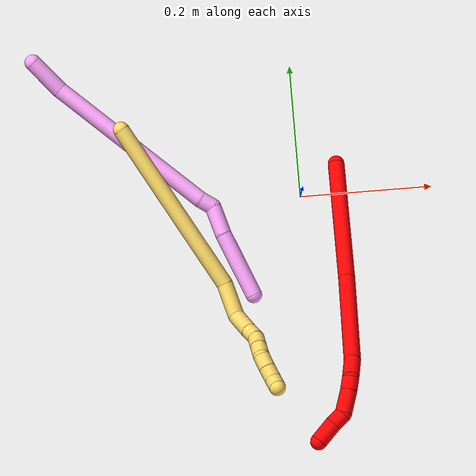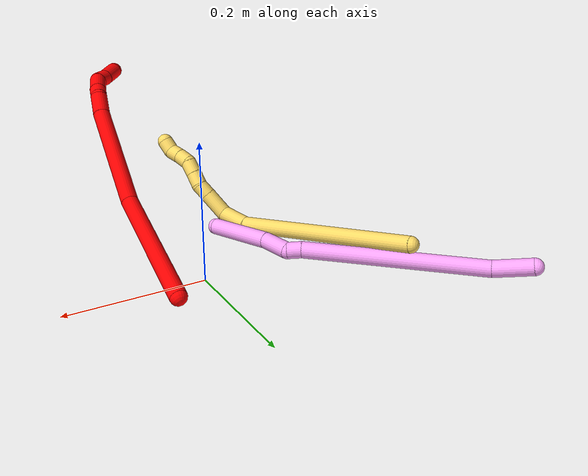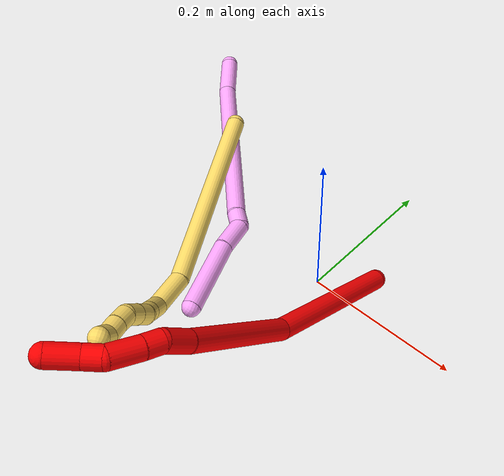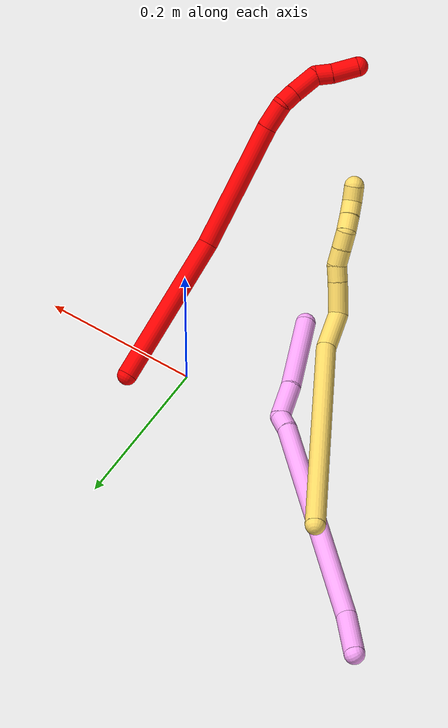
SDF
<sdf version="1.7">
 <world name="default">
  <model name="photoneo_s_sensor">
   <static>1</static>
   <pose>0 0 2 1.57079 1.57079 3.14159</pose>
   <link name="link">
    <inertial><mass>0.1</mass></inertial>
    <sensor name="sensor" type="depth">
     <update_rate>30</update_rate>
     <camera>
      <horizontal_fov>1.22</horizontal_fov>
      <image><width>1920</width><height>1200</height><format>B8G8R8</format></image>
      <clip><near>0.1</near><far>4</far></clip>
      <depth_camera><output>points</output></depth_camera>
     </camera>
     <plugin name="camera_plugin" filename="libgazebo_ros_depth_camera.so">
      <baseline>0.2</baseline>
      <alwaysOn>1</alwaysOn>
      <updateRate>0.0</updateRate>
      <cameraName>camera_ir</cameraName>
      <imageTopicName>/camera/color/image_raw</imageTopicName>
      <cameraInfoTopicName>/camera/color/camera_info</cameraInfoTopicName>
      <depthImageTopicName>/camera/depth/image_raw</depthImageTopicName>
      <depthImageCameraInfoTopicName>/camera/depth/camera_info</depthImageCameraInfoTopicName>
      <pointCloudTopicName>/camera/depth/points</pointCloudTopicName>
      <frameName>fr_optical</frameName>
      <pointCloudCutoff>0.1</pointCloudCutoff>
      <pointCloudCutoffMax>2.0</pointCloudCutoffMax>
      <distortionK1>0</distortionK1>
      <distortionK2>0</distortionK2>
      <distortionK3>0</distortionK3>
      <distortionT1>0</distortionT1>
      <distortionT2>0</distortionT2>
      <CxPrime>0</CxPrime>
      <Cx>0</Cx>
      <Cy>0</Cy>
      <focalLength>0</focalLength>
      <hackBaseline>0</hackBaseline>
     </plugin>
    </sensor>
   </link>
  </model>
  <model name="bin">
   <static>1</static>
   <link name="bottom">
    <collision name="collision-bottom">
     <pose>0 0 -0.01 0 -0 0</pose>
     <geometry><box><size>0.8 0.6 0.02</size></box></geometry>
     <surface>
      <friction><ode><mu>100</mu><mu2>100</mu2></ode></friction>
      <contact><collide_bitmask>65535</collide_bitmask></contact>
     </surface>
    </collision>
   </link>
   <link name="west_wall">
    <collision name="collision-west_wall">
     <pose>-0.41 0 0.1 0 -0 0</pose>
     <geometry><box><size>0.02 0.6 0.2</size></box></geometry>
     <surface>
      <friction><ode><mu>100</mu><mu2>100</mu2></ode></friction>
      <contact><collide_bitmask>65535</collide_bitmask></contact>
     </surface>
    </collision>
   </link>
   <link name="east_wall">
    <collision name="collision-east_wall">
     <pose>0.41 0 0.1 0 -0 0</pose>
     <geometry><box><size>0.02 0.6 0.2</size></box></geometry>
     <surface>
      <friction><ode><mu>100</mu><mu2>100</mu2></ode></friction>
      <contact><collide_bitmask>65535</collide_bitmask></contact>
     </surface>
    </collision>
   </link>
   <link name="south_wall">
    <collision name="collision-south_wall">
     <pose>0 -0.31 0.1 0 -0 0</pose>
     <geometry><box><size>0.8 0.02 0.2</size></box></geometry>
     <surface>
      <friction><ode><mu>100</mu><mu2>100</mu2></ode></friction>
      <contact><collide_bitmask>65535</collide_bitmask></contact>
     </surface>
    </collision>
   </link>
   <link name="north_wall">
    <collision name="collision-north_wall">
     <pose>0 0.31 0.1 0 -0 0</pose>
     <geometry><box><size>0.8 0.02 0.2</size></box></geometry>
     <surface>
      <friction><ode><mu>100</mu><mu2>100</mu2></ode></friction>
      <contact><collide_bitmask>65535</collide_bitmask></contact>
     </surface>
    </collision>
   </link>
  </model>
  <model name="2">
   <static>0</static>
   <link name="2">
    <collision name="collision-cylinder-e_1_1_4">
     <pose>0.001164 -0.013631 0.095627 0.141585 0.012051 0.000855</pose>
     <geometry><cylinder><radius>0.0125</radius><length>0.193202</length></cylinder></geometry>
     <surface>
      <friction><ode><mu>1.16</mu><mu2>1.16</mu2><slip1>0</slip1><slip2>0</slip2></ode></friction>
      <contact><ode><kp>1e+06</kp><kd>1</kd><max_vel>0</max_vel><min_depth>0.001</min_depth></ode></contact>
     </surface>
    </collision>
    <visual name="visual-cylinder-e_1_1_4">
     <pose>0.001164 -0.013631 0.095627 0.141585 0.012051 0.000855</pose>
     <geometry><cylinder><radius>0.0125</radius><length>0.193202</length></cylinder></geometry>
     <material><ambient>1 0 0 1</ambient></material>
    </visual>
    <collision name="collision-cylinder-e_2_4_5">
     <pose>-0.005063 -0.015868 0.271302 -0.141382 -0.091165 0.00646</pose>
     <geometry><cylinder><radius>0.0125</radius><length>0.162382</length></cylinder></geometry>
     <surface>
      <friction><ode><mu>1.16</mu><mu2>1.16</mu2><slip1>0</slip1><slip2>0</slip2></ode></friction>
      <contact><ode><kp>1e+06</kp><kd>1</kd><max_vel>0</max_vel><min_depth>0.001</min_depth></ode></contact>
     </surface>
    </collision>
    <visual name="visual-cylinder-e_2_4_5">
     <pose>-0.005063 -0.015868 0.271302 -0.141382 -0.091165 0.00646</pose>
     <geometry><cylinder><radius>0.0125</radius><length>0.162382</length></cylinder></geometry>
     <material><ambient>1 0 0 1</ambient></material>
    </visual>
    <collision name="collision-cylinder-e_3_5_6">
     <pose>-0.016153 -0.002178 0.36784 -0.138373 -0.218532 0.015204</pose>
     <geometry><cylinder><radius>0.0125</radius><length>0.034112</length></cylinder></geometry>
     <surface>
      <friction><ode><mu>1.16</mu><mu2>1.16</mu2><slip1>0</slip1><slip2>0</slip2></ode></friction>
      <contact><ode><kp>1e+06</kp><kd>1</kd><max_vel>0</max_vel><min_depth>0.001</min_depth></ode></contact>
     </surface>
    </collision>
    <visual name="visual-cylinder-e_3_5_6">
     <pose>-0.016153 -0.002178 0.36784 -0.138373 -0.218532 0.015204</pose>
     <geometry><cylinder><radius>0.0125</radius><length>0.034112</length></cylinder></geometry>
     <material><ambient>1 0 0 1</ambient></material>
    </visual>
    <collision name="collision-cylinder-e_4_6_7">
     <pose>-0.021638 -0.003044 0.393792 0.322634 -0.177331 -0.028931</pose>
     <geometry><cylinder><radius>0.0125</radius><length>0.020269</length></cylinder></geometry>
     <surface>
      <friction><ode><mu>1.16</mu><mu2>1.16</mu2><slip1>0</slip1><slip2>0</slip2></ode></friction>
      <contact><ode><kp>1e+06</kp><kd>1</kd><max_vel>0</max_vel><min_depth>0.001</min_depth></ode></contact>
     </surface>
    </collision>
    <visual name="visual-cylinder-e_4_6_7">
     <pose>-0.021638 -0.003044 0.393792 0.322634 -0.177331 -0.028931</pose>
     <geometry><cylinder><radius>0.0125</radius><length>0.020269</length></cylinder></geometry>
     <material><ambient>1 0 0 1</ambient></material>
    </visual>
    <collision name="collision-cylinder-e_5_7_8">
     <pose>-0.027846 -0.012052 0.419649 0.342431 -0.248691 -0.043217</pose>
     <geometry><cylinder><radius>0.0125</radius><length>0.035919</length></cylinder></geometry>
     <surface>
      <friction><ode><mu>1.16</mu><mu2>1.16</mu2><slip1>0</slip1><slip2>0</slip2></ode></friction>
      <contact><ode><kp>1e+06</kp><kd>1</kd><max_vel>0</max_vel><min_depth>0.001</min_depth></ode></contact>
     </surface>
    </collision>
    <visual name="visual-cylinder-e_5_7_8">
     <pose>-0.027846 -0.012052 0.419649 0.342431 -0.248691 -0.043217</pose>
     <geometry><cylinder><radius>0.0125</radius><length>0.035919</length></cylinder></geometry>
     <material><ambient>1 0 0 1</ambient></material>
    </visual>
    <collision name="collision-cylinder-e_6_8_9">
     <pose>-0.039163 -0.022944 0.441758 0.723612 -0.735417 -0.289553</pose>
     <geometry><cylinder><radius>0.0125</radius><length>0.020559</length></cylinder></geometry>
     <surface>
      <friction><ode><mu>1.16</mu><mu2>1.16</mu2><slip1>0</slip1><slip2>0</slip2></ode></friction>
      <contact><ode><kp>1e+06</kp><kd>1</kd><max_vel>0</max_vel><min_depth>0.001</min_depth></ode></contact>
     </surface>
    </collision>
    <visual name="visual-cylinder-e_6_8_9">
     <pose>-0.039163 -0.022944 0.441758 0.723612 -0.735417 -0.289553</pose>
     <geometry><cylinder><radius>0.0125</radius><length>0.020559</length></cylinder></geometry>
     <material><ambient>1 0 0 1</ambient></material>
    </visual>
    <collision name="collision-cylinder-e_7_9_2">
     <pose>-0.056476 -0.034671 0.458802 0.532642 -0.669793 -0.189305</pose>
     <geometry><cylinder><radius>0.0125</radius><length>0.033557</length></cylinder></geometry>
     <surface>
      <friction><ode><mu>1.16</mu><mu2>1.16</mu2><slip1>0</slip1><slip2>0</slip2></ode></friction>
      <contact><ode><kp>1e+06</kp><kd>1</kd><max_vel>0</max_vel><min_depth>0.001</min_depth></ode></contact>
     </surface>
    </collision>
    <visual name="visual-cylinder-e_7_9_2">
     <pose>-0.056476 -0.034671 0.458802 0.532642 -0.669793 -0.189305</pose>
     <geometry><cylinder><radius>0.0125</radius><length>0.033557</length></cylinder></geometry>
     <material><ambient>1 0 0 1</ambient></material>
    </visual>
    <collision name="collision-sphere-2">
     <pose>-0.066893 -0.04135 0.470134 0 -0 0</pose>
     <geometry><sphere><radius>0.0125</radius></sphere></geometry>
     <surface>
      <friction><ode><mu>1.16</mu><mu2>1.16</mu2><slip1>0</slip1><slip2>0</slip2></ode></friction>
      <contact><ode><kp>1e+06</kp><kd>1</kd><max_vel>0</max_vel><min_depth>0.001</min_depth></ode></contact>
     </surface>
    </collision>
    <visual name="visual-sphere-2">
     <pose>-0.066893 -0.04135 0.470134 0 -0 0</pose>
     <geometry><sphere><radius>0.0125</radius></sphere></geometry>
     <material><ambient>1 0 0 1</ambient></material>
    </visual>
    <collision name="collision-sphere-9">
     <pose>-0.046059 -0.027991 0.447471 0 -0 0</pose>
     <geometry><sphere><radius>0.0125</radius></sphere></geometry>
     <surface>
      <friction><ode><mu>1.16</mu><mu2>1.16</mu2><slip1>0</slip1><slip2>0</slip2></ode></friction>
      <contact><ode><kp>1e+06</kp><kd>1</kd><max_vel>0</max_vel><min_depth>0.001</min_depth></ode></contact>
     </surface>
    </collision>
    <visual name="visual-sphere-9">
     <pose>-0.046059 -0.027991 0.447471 0 -0 0</pose>
     <geometry><sphere><radius>0.0125</radius></sphere></geometry>
     <material><ambient>1 0 0 1</ambient></material>
    </visual>
    <collision name="collision-sphere-4">
     <pose>0.002328 -0.027261 0.191255 0 -0 0</pose>
     <geometry><sphere><radius>0.0125</radius></sphere></geometry>
     <surface>
      <friction><ode><mu>1.16</mu><mu2>1.16</mu2><slip1>0</slip1><slip2>0</slip2></ode></friction>
      <contact><ode><kp>1e+06</kp><kd>1</kd><max_vel>0</max_vel><min_depth>0.001</min_depth></ode></contact>
     </surface>
    </collision>
    <visual name="visual-sphere-4">
     <pose>0.002328 -0.027261 0.191255 0 -0 0</pose>
     <geometry><sphere><radius>0.0125</radius></sphere></geometry>
     <material><ambient>1 0 0 1</ambient></material>
    </visual>
    <collision name="collision-sphere-1">
     <geometry><sphere><radius>0.0125</radius></sphere></geometry>
     <surface>
      <friction><ode><mu>1.16</mu><mu2>1.16</mu2><slip1>0</slip1><slip2>0</slip2></ode></friction>
      <contact><ode><kp>1e+06</kp><kd>1</kd><max_vel>0</max_vel><min_depth>0.001</min_depth></ode></contact>
     </surface>
    </collision>
    <visual name="visual-sphere-1">
     <geometry><sphere><radius>0.0125</radius></sphere></geometry>
     <material><ambient>1 0 0 1</ambient></material>
    </visual>
    <collision name="collision-sphere-8">
     <pose>-0.032267 -0.017897 0.436046 0 -0 0</pose>
     <geometry><sphere><radius>0.0125</radius></sphere></geometry>
     <surface>
      <friction><ode><mu>1.16</mu><mu2>1.16</mu2><slip1>0</slip1><slip2>0</slip2></ode></friction>
      <contact><ode><kp>1e+06</kp><kd>1</kd><max_vel>0</max_vel><min_depth>0.001</min_depth></ode></contact>
     </surface>
    </collision>
    <visual name="visual-sphere-8">
     <pose>-0.032267 -0.017897 0.436046 0 -0 0</pose>
     <geometry><sphere><radius>0.0125</radius></sphere></geometry>
     <material><ambient>1 0 0 1</ambient></material>
    </visual>
    <collision name="collision-sphere-5">
     <pose>-0.012455 -0.004475 0.351349 0 -0 0</pose>
     <geometry><sphere><radius>0.0125</radius></sphere></geometry>
     <surface>
      <friction><ode><mu>1.16</mu><mu2>1.16</mu2><slip1>0</slip1><slip2>0</slip2></ode></friction>
      <contact><ode><kp>1e+06</kp><kd>1</kd><max_vel>0</max_vel><min_depth>0.001</min_depth></ode></contact>
     </surface>
    </collision>
    <visual name="visual-sphere-5">
     <pose>-0.012455 -0.004475 0.351349 0 -0 0</pose>
     <geometry><sphere><radius>0.0125</radius></sphere></geometry>
     <material><ambient>1 0 0 1</ambient></material>
    </visual>
    <collision name="collision-sphere-6">
     <pose>-0.01985 0.000118 0.384331 0 -0 0</pose>
     <geometry><sphere><radius>0.0125</radius></sphere></geometry>
     <surface>
      <friction><ode><mu>1.16</mu><mu2>1.16</mu2><slip1>0</slip1><slip2>0</slip2></ode></friction>
      <contact><ode><kp>1e+06</kp><kd>1</kd><max_vel>0</max_vel><min_depth>0.001</min_depth></ode></contact>
     </surface>
    </collision>
    <visual name="visual-sphere-6">
     <pose>-0.01985 0.000118 0.384331 0 -0 0</pose>
     <geometry><sphere><radius>0.0125</radius></sphere></geometry>
     <material><ambient>1 0 0 1</ambient></material>
    </visual>
    <collision name="collision-sphere-7">
     <pose>-0.023426 -0.006207 0.403253 0 -0 0</pose>
     <geometry><sphere><radius>0.0125</radius></sphere></geometry>
     <surface>
      <friction><ode><mu>1.16</mu><mu2>1.16</mu2><slip1>0</slip1><slip2>0</slip2></ode></friction>
      <contact><ode><kp>1e+06</kp><kd>1</kd><max_vel>0</max_vel><min_depth>0.001</min_depth></ode></contact>
     </surface>
    </collision>
    <visual name="visual-sphere-7">
     <pose>-0.023426 -0.006207 0.403253 0 -0 0</pose>
     <geometry><sphere><radius>0.0125</radius></sphere></geometry>
     <material><ambient>1 0 0 1</ambient></material>
    </visual>
    <inertial>
     <pose>-0.010575 -0.014828 0.245222 0 -0 0</pose>
     <mass>0.5</mass>
     <inertia>
      <ixx>0.000982</ixx>
      <ixy>0</ixy>
      <ixz>0</ixz>
      <iyy>0.000977</iyy>
      <iyz>0</iyz>
      <izz>0.000108</izz>
     </inertia>
    </inertial>
   </link>
   <pose>0.05799 0.045137 0.011497 1.03028 0.234329 -0.117136</pose>
  </model>
  <model name="4">
   <static>0</static>
   <link name="4">
    <collision name="collision-cylinder-e_1_1_4">
     <pose>0.015112 -0.024898 -0.003543 1.71214 0.541083 0.618678</pose>
     <geometry><cylinder><radius>0.0125</radius><length>0.058679</length></cylinder></geometry>
     <surface>
      <friction><ode><mu>1.16</mu><mu2>1.16</mu2><slip1>0</slip1><slip2>0</slip2></ode></friction>
      <contact><ode><kp>1e+06</kp><kd>1</kd><max_vel>0</max_vel><min_depth>0.001</min_depth></ode></contact>
     </surface>
    </collision>
    <visual name="visual-cylinder-e_1_1_4">
     <pose>0.015112 -0.024898 -0.003543 1.71214 0.541083 0.618678</pose>
     <geometry><cylinder><radius>0.0125</radius><length>0.058679</length></cylinder></geometry>
     <material><ambient>1 0.65098 0.996078 1</ambient></material>
    </visual>
    <collision name="collision-cylinder-e_2_4_5">
     <pose>0.126508 -0.144561 -0.021362 1.72033 0.787738 0.899723</pose>
     <geometry><cylinder><radius>0.0125</radius><length>0.271699</length></cylinder></geometry>
     <surface>
      <friction><ode><mu>1.16</mu><mu2>1.16</mu2><slip1>0</slip1><slip2>0</slip2></ode></friction>
      <contact><ode><kp>1e+06</kp><kd>1</kd><max_vel>0</max_vel><min_depth>0.001</min_depth></ode></contact>
     </surface>
    </collision>
    <visual name="visual-cylinder-e_2_4_5">
     <pose>0.126508 -0.144561 -0.021362 1.72033 0.787738 0.899723</pose>
     <geometry><cylinder><radius>0.0125</radius><length>0.271699</length></cylinder></geometry>
     <material><ambient>1 0.65098 0.996078 1</ambient></material>
    </visual>
    <collision name="collision-cylinder-e_3_5_6">
     <pose>0.230168 -0.246869 -0.03873 1.95972 0.735476 1.04253</pose>
     <geometry><cylinder><radius>0.0125</radius><length>0.021986</length></cylinder></geometry>
     <surface>
      <friction><ode><mu>1.16</mu><mu2>1.16</mu2><slip1>0</slip1><slip2>0</slip2></ode></friction>
      <contact><ode><kp>1e+06</kp><kd>1</kd><max_vel>0</max_vel><min_depth>0.001</min_depth></ode></contact>
     </surface>
    </collision>
    <visual name="visual-cylinder-e_3_5_6">
     <pose>0.230168 -0.246869 -0.03873 1.95972 0.735476 1.04253</pose>
     <geometry><cylinder><radius>0.0125</radius><length>0.021986</length></cylinder></geometry>
     <material><ambient>1 0.65098 0.996078 1</ambient></material>
    </visual>
    <collision name="collision-cylinder-e_4_6_7">
     <pose>0.248263 -0.272233 -0.033408 1.12974 0.498184 0.319674</pose>
     <geometry><cylinder><radius>0.0125</radius><length>0.044869</length></cylinder></geometry>
     <surface>
      <friction><ode><mu>1.16</mu><mu2>1.16</mu2><slip1>0</slip1><slip2>0</slip2></ode></friction>
      <contact><ode><kp>1e+06</kp><kd>1</kd><max_vel>0</max_vel><min_depth>0.001</min_depth></ode></contact>
     </surface>
    </collision>
    <visual name="visual-cylinder-e_4_6_7">
     <pose>0.248263 -0.272233 -0.033408 1.12974 0.498184 0.319674</pose>
     <geometry><cylinder><radius>0.0125</radius><length>0.044869</length></cylinder></geometry>
     <material><ambient>1 0.65098 0.996078 1</ambient></material>
    </visual>
    <collision name="collision-cylinder-e_5_7_2">
     <pose>0.283729 -0.333366 -0.012666 1.29347 0.502474 0.382843</pose>
     <geometry><cylinder><radius>0.0125</radius><length>0.102768</length></cylinder></geometry>
     <surface>
      <friction><ode><mu>1.16</mu><mu2>1.16</mu2><slip1>0</slip1><slip2>0</slip2></ode></friction>
      <contact><ode><kp>1e+06</kp><kd>1</kd><max_vel>0</max_vel><min_depth>0.001</min_depth></ode></contact>
     </surface>
    </collision>
    <visual name="visual-cylinder-e_5_7_2">
     <pose>0.283729 -0.333366 -0.012666 1.29347 0.502474 0.382843</pose>
     <geometry><cylinder><radius>0.0125</radius><length>0.102768</length></cylinder></geometry>
     <material><ambient>1 0.65098 0.996078 1</ambient></material>
    </visual>
    <collision name="collision-sphere-2">
     <pose>0.308476 -0.376678 -0.000336 0 -0 0</pose>
     <geometry><sphere><radius>0.0125</radius></sphere></geometry>
     <surface>
      <friction><ode><mu>1.16</mu><mu2>1.16</mu2><slip1>0</slip1><slip2>0</slip2></ode></friction>
      <contact><ode><kp>1e+06</kp><kd>1</kd><max_vel>0</max_vel><min_depth>0.001</min_depth></ode></contact>
     </surface>
    </collision>
    <visual name="visual-sphere-2">
     <pose>0.308476 -0.376678 -0.000336 0 -0 0</pose>
     <geometry><sphere><radius>0.0125</radius></sphere></geometry>
     <material><ambient>1 0.65098 0.996078 1</ambient></material>
    </visual>
    <collision name="collision-sphere-7">
     <pose>0.258983 -0.290054 -0.024995 0 -0 0</pose>
     <geometry><sphere><radius>0.0125</radius></sphere></geometry>
     <surface>
      <friction><ode><mu>1.16</mu><mu2>1.16</mu2><slip1>0</slip1><slip2>0</slip2></ode></friction>
      <contact><ode><kp>1e+06</kp><kd>1</kd><max_vel>0</max_vel><min_depth>0.001</min_depth></ode></contact>
     </surface>
    </collision>
    <visual name="visual-sphere-7">
     <pose>0.258983 -0.290054 -0.024995 0 -0 0</pose>
     <geometry><sphere><radius>0.0125</radius></sphere></geometry>
     <material><ambient>1 0.65098 0.996078 1</ambient></material>
    </visual>
    <collision name="collision-sphere-6">
     <pose>0.237544 -0.254411 -0.041821 0 -0 0</pose>
     <geometry><sphere><radius>0.0125</radius></sphere></geometry>
     <surface>
      <friction><ode><mu>1.16</mu><mu2>1.16</mu2><slip1>0</slip1><slip2>0</slip2></ode></friction>
      <contact><ode><kp>1e+06</kp><kd>1</kd><max_vel>0</max_vel><min_depth>0.001</min_depth></ode></contact>
     </surface>
    </collision>
    <visual name="visual-sphere-6">
     <pose>0.237544 -0.254411 -0.041821 0 -0 0</pose>
     <geometry><sphere><radius>0.0125</radius></sphere></geometry>
     <material><ambient>1 0.65098 0.996078 1</ambient></material>
    </visual>
    <collision name="collision-sphere-5">
     <pose>0.222792 -0.239326 -0.035639 0 -0 0</pose>
     <geometry><sphere><radius>0.0125</radius></sphere></geometry>
     <surface>
      <friction><ode><mu>1.16</mu><mu2>1.16</mu2><slip1>0</slip1><slip2>0</slip2></ode></friction>
      <contact><ode><kp>1e+06</kp><kd>1</kd><max_vel>0</max_vel><min_depth>0.001</min_depth></ode></contact>
     </surface>
    </collision>
    <visual name="visual-sphere-5">
     <pose>0.222792 -0.239326 -0.035639 0 -0 0</pose>
     <geometry><sphere><radius>0.0125</radius></sphere></geometry>
     <material><ambient>1 0.65098 0.996078 1</ambient></material>
    </visual>
    <collision name="collision-sphere-1">
     <geometry><sphere><radius>0.0125</radius></sphere></geometry>
     <surface>
      <friction><ode><mu>1.16</mu><mu2>1.16</mu2><slip1>0</slip1><slip2>0</slip2></ode></friction>
      <contact><ode><kp>1e+06</kp><kd>1</kd><max_vel>0</max_vel><min_depth>0.001</min_depth></ode></contact>
     </surface>
    </collision>
    <visual name="visual-sphere-1">
     <geometry><sphere><radius>0.0125</radius></sphere></geometry>
     <material><ambient>1 0.65098 0.996078 1</ambient></material>
    </visual>
    <collision name="collision-sphere-4">
     <pose>0.030223 -0.049795 -0.007086 0 -0 0</pose>
     <geometry><sphere><radius>0.0125</radius></sphere></geometry>
     <surface>
      <friction><ode><mu>1.16</mu><mu2>1.16</mu2><slip1>0</slip1><slip2>0</slip2></ode></friction>
      <contact><ode><kp>1e+06</kp><kd>1</kd><max_vel>0</max_vel><min_depth>0.001</min_depth></ode></contact>
     </surface>
    </collision>
    <visual name="visual-sphere-4">
     <pose>0.030223 -0.049795 -0.007086 0 -0 0</pose>
     <geometry><sphere><radius>0.0125</radius></sphere></geometry>
     <material><ambient>1 0.65098 0.996078 1</ambient></material>
    </visual>
    <inertial>
     <pose>0.161234 -0.185279 -0.019328 0 -0 0</pose>
     <mass>0.5</mass>
     <inertia>
      <ixx>0.001834</ixx>
      <ixy>0</ixy>
      <ixz>0</ixz>
      <iyy>0.001761</iyy>
      <iyz>0</iyz>
      <izz>2.5e-05</izz>
     </inertia>
    </inertial>
   </link>
   <pose>-0.388516 0.23581 0.024703 0.816236 -0.695053 -0.334289</pose>
  </model>
  <model name="5">
   <static>0</static>
   <link name="5">
    <collision name="collision-cylinder-e_1_1_4">
     <pose>0.000691 -0.014452 0.139734 0.103059 0.004922 0.000254</pose>
     <geometry><cylinder><radius>0.0125</radius><length>0.280962</length></cylinder></geometry>
     <surface>
      <friction><ode><mu>1.16</mu><mu2>1.16</mu2><slip1>0</slip1><slip2>0</slip2></ode></friction>
      <contact><ode><kp>1e+06</kp><kd>1</kd><max_vel>0</max_vel><min_depth>0.001</min_depth></ode></contact>
     </surface>
    </collision>
    <visual name="visual-cylinder-e_1_1_4">
     <pose>0.000691 -0.014452 0.139734 0.103059 0.004922 0.000254</pose>
     <geometry><cylinder><radius>0.0125</radius><length>0.280962</length></cylinder></geometry>
     <material><ambient>1 0.858824 0.4 1</ambient></material>
    </visual>
    <collision name="collision-cylinder-e_2_4_5">
     <pose>0.008187 -0.035607 0.303705 0.269801 0.264257 0.036072</pose>
     <geometry><cylinder><radius>0.0125</radius><length>0.0521</length></cylinder></geometry>
     <surface>
      <friction><ode><mu>1.16</mu><mu2>1.16</mu2><slip1>0</slip1><slip2>0</slip2></ode></friction>
      <contact><ode><kp>1e+06</kp><kd>1</kd><max_vel>0</max_vel><min_depth>0.001</min_depth></ode></contact>
     </surface>
    </collision>
    <visual name="visual-cylinder-e_2_4_5">
     <pose>0.008187 -0.035607 0.303705 0.269801 0.264257 0.036072</pose>
     <geometry><cylinder><radius>0.0125</radius><length>0.0521</length></cylinder></geometry>
     <material><ambient>1 0.858824 0.4 1</ambient></material>
    </visual>
    <collision name="collision-cylinder-e_3_5_6">
     <pose>0.01469 -0.059296 0.339842 0.959667 -0.014522 -0.007557</pose>
     <geometry><cylinder><radius>0.0125</radius><length>0.041486</length></cylinder></geometry>
     <surface>
      <friction><ode><mu>1.16</mu><mu2>1.16</mu2><slip1>0</slip1><slip2>0</slip2></ode></friction>
      <contact><ode><kp>1e+06</kp><kd>1</kd><max_vel>0</max_vel><min_depth>0.001</min_depth></ode></contact>
     </surface>
    </collision>
    <visual name="visual-cylinder-e_3_5_6">
     <pose>0.01469 -0.059296 0.339842 0.959667 -0.014522 -0.007557</pose>
     <geometry><cylinder><radius>0.0125</radius><length>0.041486</length></cylinder></geometry>
     <material><ambient>1 0.858824 0.4 1</ambient></material>
    </visual>
    <collision name="collision-cylinder-e_4_6_7">
     <pose>0.013757 -0.084871 0.357515 0.979013 -0.060981 -0.032495</pose>
     <geometry><cylinder><radius>0.0125</radius><length>0.020733</length></cylinder></geometry>
     <surface>
      <friction><ode><mu>1.16</mu><mu2>1.16</mu2><slip1>0</slip1><slip2>0</slip2></ode></friction>
      <contact><ode><kp>1e+06</kp><kd>1</kd><max_vel>0</max_vel><min_depth>0.001</min_depth></ode></contact>
     </surface>
    </collision>
    <visual name="visual-cylinder-e_4_6_7">
     <pose>0.013757 -0.084871 0.357515 0.979013 -0.060981 -0.032495</pose>
     <geometry><cylinder><radius>0.0125</radius><length>0.020733</length></cylinder></geometry>
     <material><ambient>1 0.858824 0.4 1</ambient></material>
    </visual>
    <collision name="collision-cylinder-e_5_7_8">
     <pose>0.016078 -0.102619 0.368297 1.07032 0.275606 0.164072</pose>
     <geometry><cylinder><radius>0.0125</radius><length>0.021701</length></cylinder></geometry>
     <surface>
      <friction><ode><mu>1.16</mu><mu2>1.16</mu2><slip1>0</slip1><slip2>0</slip2></ode></friction>
      <contact><ode><kp>1e+06</kp><kd>1</kd><max_vel>0</max_vel><min_depth>0.001</min_depth></ode></contact>
     </surface>
    </collision>
    <visual name="visual-cylinder-e_5_7_8">
     <pose>0.016078 -0.102619 0.368297 1.07032 0.275606 0.164072</pose>
     <geometry><cylinder><radius>0.0125</radius><length>0.021701</length></cylinder></geometry>
     <material><ambient>1 0.858824 0.4 1</ambient></material>
    </visual>
    <collision name="collision-cylinder-e_6_8_9">
     <pose>0.021993 -0.120979 0.378776 1.03446 0.27005 0.154263</pose>
     <geometry><cylinder><radius>0.0125</radius><length>0.02221</length></cylinder></geometry>
     <surface>
      <friction><ode><mu>1.16</mu><mu2>1.16</mu2><slip1>0</slip1><slip2>0</slip2></ode></friction>
      <contact><ode><kp>1e+06</kp><kd>1</kd><max_vel>0</max_vel><min_depth>0.001</min_depth></ode></contact>
     </surface>
    </collision>
    <visual name="visual-cylinder-e_6_8_9">
     <pose>0.021993 -0.120979 0.378776 1.03446 0.27005 0.154263</pose>
     <geometry><cylinder><radius>0.0125</radius><length>0.02221</length></cylinder></geometry>
     <material><ambient>1 0.858824 0.4 1</ambient></material>
    </visual>
    <collision name="collision-cylinder-e_7_9_10">
     <pose>0.026772 -0.135283 0.392996 0.528011 0.177429 0.048079</pose>
     <geometry><cylinder><radius>0.0125</radius><length>0.020584</length></cylinder></geometry>
     <surface>
      <friction><ode><mu>1.16</mu><mu2>1.16</mu2><slip1>0</slip1><slip2>0</slip2></ode></friction>
      <contact><ode><kp>1e+06</kp><kd>1</kd><max_vel>0</max_vel><min_depth>0.001</min_depth></ode></contact>
     </surface>
    </collision>
    <visual name="visual-cylinder-e_7_9_10">
     <pose>0.026772 -0.135283 0.392996 0.528011 0.177429 0.048079</pose>
     <geometry><cylinder><radius>0.0125</radius><length>0.020584</length></cylinder></geometry>
     <material><ambient>1 0.858824 0.4 1</ambient></material>
    </visual>
    <collision name="collision-cylinder-e_8_10_11">
     <pose>0.029987 -0.144756 0.410696 0.454189 0.139484 0.032282</pose>
     <geometry><cylinder><radius>0.0125</radius><length>0.020112</length></cylinder></geometry>
     <surface>
      <friction><ode><mu>1.16</mu><mu2>1.16</mu2><slip1>0</slip1><slip2>0</slip2></ode></friction>
      <contact><ode><kp>1e+06</kp><kd>1</kd><max_vel>0</max_vel><min_depth>0.001</min_depth></ode></contact>
     </surface>
    </collision>
    <visual name="visual-cylinder-e_8_10_11">
     <pose>0.029987 -0.144756 0.410696 0.454189 0.139484 0.032282</pose>
     <geometry><cylinder><radius>0.0125</radius><length>0.020112</length></cylinder></geometry>
     <material><ambient>1 0.858824 0.4 1</ambient></material>
    </visual>
    <collision name="collision-cylinder-e_9_11_2">
     <pose>0.032774 -0.15754 0.42497 1.00654 0.138514 0.076345</pose>
     <geometry><cylinder><radius>0.0125</radius><length>0.02011</length></cylinder></geometry>
     <surface>
      <friction><ode><mu>1.16</mu><mu2>1.16</mu2><slip1>0</slip1><slip2>0</slip2></ode></friction>
      <contact><ode><kp>1e+06</kp><kd>1</kd><max_vel>0</max_vel><min_depth>0.001</min_depth></ode></contact>
     </surface>
    </collision>
    <visual name="visual-cylinder-e_9_11_2">
     <pose>0.032774 -0.15754 0.42497 1.00654 0.138514 0.076345</pose>
     <geometry><cylinder><radius>0.0125</radius><length>0.02011</length></cylinder></geometry>
     <material><ambient>1 0.858824 0.4 1</ambient></material>
    </visual>
    <collision name="collision-sphere-2">
     <pose>0.034162 -0.165955 0.430296 0 -0 0</pose>
     <geometry><sphere><radius>0.0125</radius></sphere></geometry>
     <surface>
      <friction><ode><mu>1.16</mu><mu2>1.16</mu2><slip1>0</slip1><slip2>0</slip2></ode></friction>
      <contact><ode><kp>1e+06</kp><kd>1</kd><max_vel>0</max_vel><min_depth>0.001</min_depth></ode></contact>
     </surface>
    </collision>
    <visual name="visual-sphere-2">
     <pose>0.034162 -0.165955 0.430296 0 -0 0</pose>
     <geometry><sphere><radius>0.0125</radius></sphere></geometry>
     <material><ambient>1 0.858824 0.4 1</ambient></material>
    </visual>
    <collision name="collision-sphere-11">
     <pose>0.031385 -0.149125 0.419645 0 -0 0</pose>
     <geometry><sphere><radius>0.0125</radius></sphere></geometry>
     <surface>
      <friction><ode><mu>1.16</mu><mu2>1.16</mu2><slip1>0</slip1><slip2>0</slip2></ode></friction>
      <contact><ode><kp>1e+06</kp><kd>1</kd><max_vel>0</max_vel><min_depth>0.001</min_depth></ode></contact>
     </surface>
    </collision>
    <visual name="visual-sphere-11">
     <pose>0.031385 -0.149125 0.419645 0 -0 0</pose>
     <geometry><sphere><radius>0.0125</radius></sphere></geometry>
     <material><ambient>1 0.858824 0.4 1</ambient></material>
    </visual>
    <collision name="collision-sphere-10">
     <pose>0.028589 -0.140387 0.401747 0 -0 0</pose>
     <geometry><sphere><radius>0.0125</radius></sphere></geometry>
     <surface>
      <friction><ode><mu>1.16</mu><mu2>1.16</mu2><slip1>0</slip1><slip2>0</slip2></ode></friction>
      <contact><ode><kp>1e+06</kp><kd>1</kd><max_vel>0</max_vel><min_depth>0.001</min_depth></ode></contact>
     </surface>
    </collision>
    <visual name="visual-sphere-10">
     <pose>0.028589 -0.140387 0.401747 0 -0 0</pose>
     <geometry><sphere><radius>0.0125</radius></sphere></geometry>
     <material><ambient>1 0.858824 0.4 1</ambient></material>
    </visual>
    <collision name="collision-sphere-9">
     <pose>0.024956 -0.130179 0.384245 0 -0 0</pose>
     <geometry><sphere><radius>0.0125</radius></sphere></geometry>
     <surface>
      <friction><ode><mu>1.16</mu><mu2>1.16</mu2><slip1>0</slip1><slip2>0</slip2></ode></friction>
      <contact><ode><kp>1e+06</kp><kd>1</kd><max_vel>0</max_vel><min_depth>0.001</min_depth></ode></contact>
     </surface>
    </collision>
    <visual name="visual-sphere-9">
     <pose>0.024956 -0.130179 0.384245 0 -0 0</pose>
     <geometry><sphere><radius>0.0125</radius></sphere></geometry>
     <material><ambient>1 0.858824 0.4 1</ambient></material>
    </visual>
    <collision name="collision-sphere-4">
     <pose>0.001383 -0.028904 0.279468 0 -0 0</pose>
     <geometry><sphere><radius>0.0125</radius></sphere></geometry>
     <surface>
      <friction><ode><mu>1.16</mu><mu2>1.16</mu2><slip1>0</slip1><slip2>0</slip2></ode></friction>
      <contact><ode><kp>1e+06</kp><kd>1</kd><max_vel>0</max_vel><min_depth>0.001</min_depth></ode></contact>
     </surface>
    </collision>
    <visual name="visual-sphere-4">
     <pose>0.001383 -0.028904 0.279468 0 -0 0</pose>
     <geometry><sphere><radius>0.0125</radius></sphere></geometry>
     <material><ambient>1 0.858824 0.4 1</ambient></material>
    </visual>
    <collision name="collision-sphere-1">
     <geometry><sphere><radius>0.0125</radius></sphere></geometry>
     <surface>
      <friction><ode><mu>1.16</mu><mu2>1.16</mu2><slip1>0</slip1><slip2>0</slip2></ode></friction>
      <contact><ode><kp>1e+06</kp><kd>1</kd><max_vel>0</max_vel><min_depth>0.001</min_depth></ode></contact>
     </surface>
    </collision>
    <visual name="visual-sphere-1">
     <geometry><sphere><radius>0.0125</radius></sphere></geometry>
     <material><ambient>1 0.858824 0.4 1</ambient></material>
    </visual>
    <collision name="collision-sphere-8">
     <pose>0.019031 -0.111779 0.373307 0 -0 0</pose>
     <geometry><sphere><radius>0.0125</radius></sphere></geometry>
     <surface>
      <friction><ode><mu>1.16</mu><mu2>1.16</mu2><slip1>0</slip1><slip2>0</slip2></ode></friction>
      <contact><ode><kp>1e+06</kp><kd>1</kd><max_vel>0</max_vel><min_depth>0.001</min_depth></ode></contact>
     </surface>
    </collision>
    <visual name="visual-sphere-8">
     <pose>0.019031 -0.111779 0.373307 0 -0 0</pose>
     <geometry><sphere><radius>0.0125</radius></sphere></geometry>
     <material><ambient>1 0.858824 0.4 1</ambient></material>
    </visual>
    <collision name="collision-sphere-5">
     <pose>0.014991 -0.042309 0.327941 0 -0 0</pose>
     <geometry><sphere><radius>0.0125</radius></sphere></geometry>
     <surface>
      <friction><ode><mu>1.16</mu><mu2>1.16</mu2><slip1>0</slip1><slip2>0</slip2></ode></friction>
      <contact><ode><kp>1e+06</kp><kd>1</kd><max_vel>0</max_vel><min_depth>0.001</min_depth></ode></contact>
     </surface>
    </collision>
    <visual name="visual-sphere-5">
     <pose>0.014991 -0.042309 0.327941 0 -0 0</pose>
     <geometry><sphere><radius>0.0125</radius></sphere></geometry>
     <material><ambient>1 0.858824 0.4 1</ambient></material>
    </visual>
    <collision name="collision-sphere-6">
     <pose>0.014389 -0.076283 0.351743 0 -0 0</pose>
     <geometry><sphere><radius>0.0125</radius></sphere></geometry>
     <surface>
      <friction><ode><mu>1.16</mu><mu2>1.16</mu2><slip1>0</slip1><slip2>0</slip2></ode></friction>
      <contact><ode><kp>1e+06</kp><kd>1</kd><max_vel>0</max_vel><min_depth>0.001</min_depth></ode></contact>
     </surface>
    </collision>
    <visual name="visual-sphere-6">
     <pose>0.014389 -0.076283 0.351743 0 -0 0</pose>
     <geometry><sphere><radius>0.0125</radius></sphere></geometry>
     <material><ambient>1 0.858824 0.4 1</ambient></material>
    </visual>
    <collision name="collision-sphere-7">
     <pose>0.013125 -0.093458 0.363287 0 -0 0</pose>
     <geometry><sphere><radius>0.0125</radius></sphere></geometry>
     <surface>
      <friction><ode><mu>1.16</mu><mu2>1.16</mu2><slip1>0</slip1><slip2>0</slip2></ode></friction>
      <contact><ode><kp>1e+06</kp><kd>1</kd><max_vel>0</max_vel><min_depth>0.001</min_depth></ode></contact>
     </surface>
    </collision>
    <visual name="visual-sphere-7">
     <pose>0.013125 -0.093458 0.363287 0 -0 0</pose>
     <geometry><sphere><radius>0.0125</radius></sphere></geometry>
     <material><ambient>1 0.858824 0.4 1</ambient></material>
    </visual>
    <inertial>
     <pose>0.008332 -0.047827 0.23579 0 -0 0</pose>
     <mass>0.5</mass>
     <inertia>
      <ixx>0.001894</ixx>
      <ixy>0</ixy>
      <ixz>0</ixz>
      <iyy>0.001862</iyy>
      <iyz>0</iyz>
      <izz>0.000227</izz>
     </inertia>
    </inertial>
   </link>
   <pose>-0.262443 0.120621 0.041831 -1.77906 -0.064821 -2.61872</pose>
  </model>
 </world>
</sdf>
